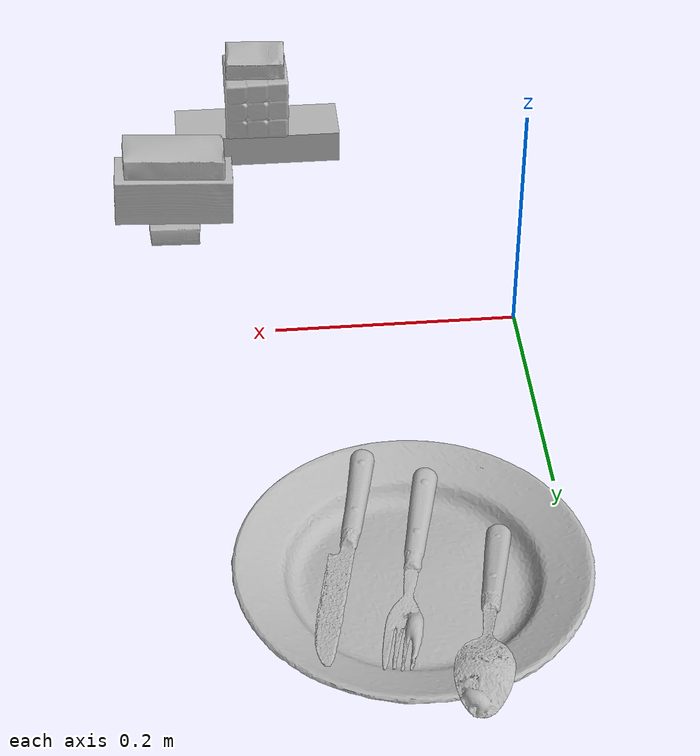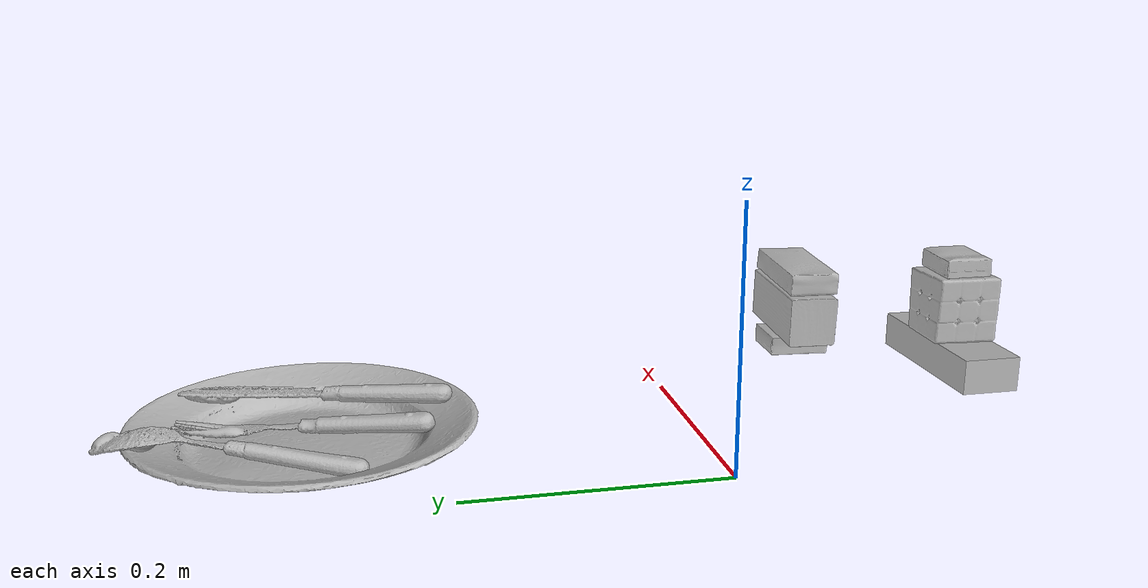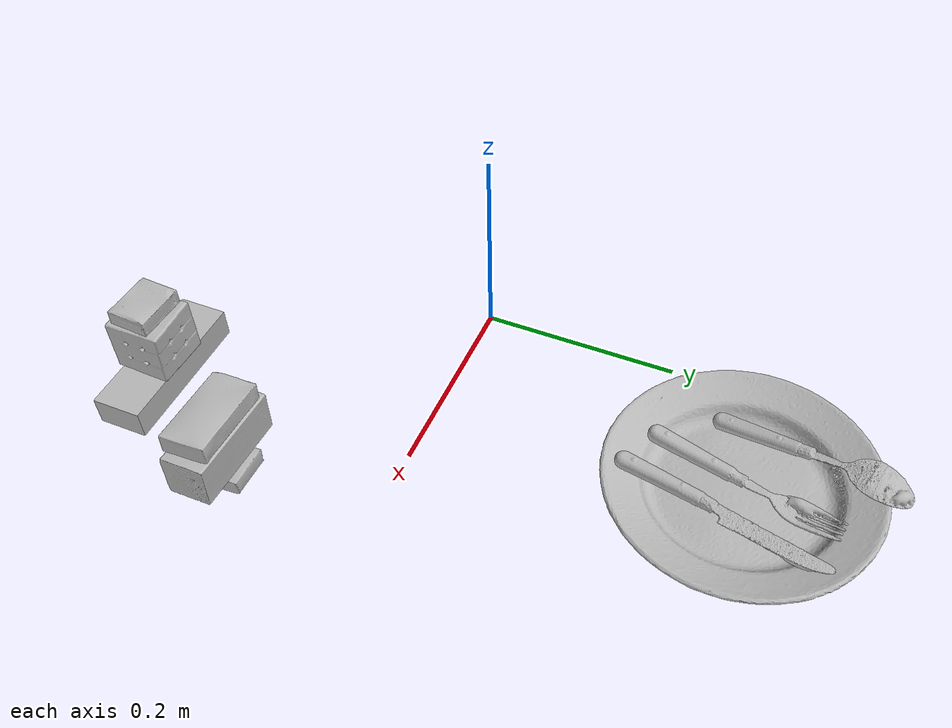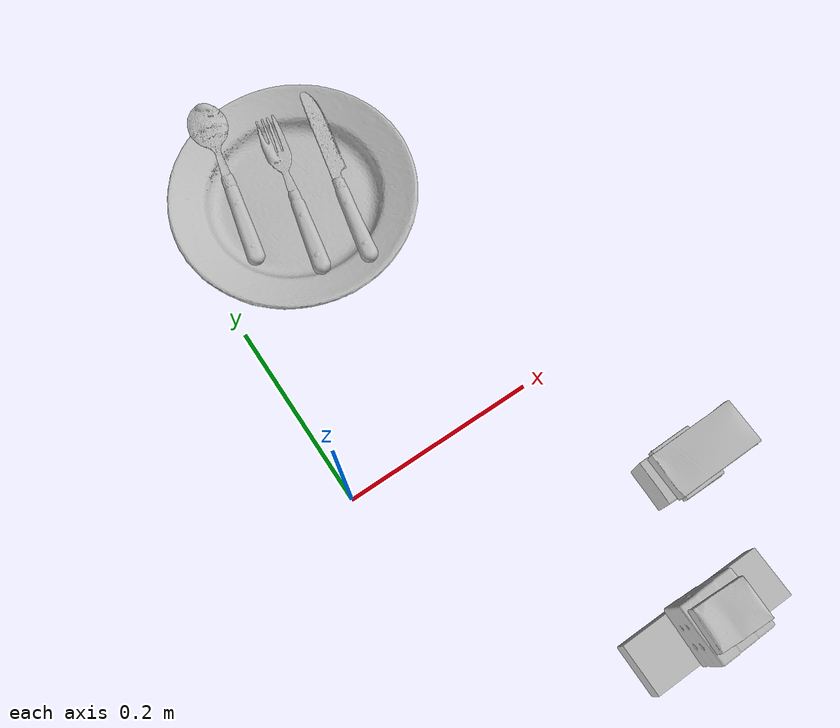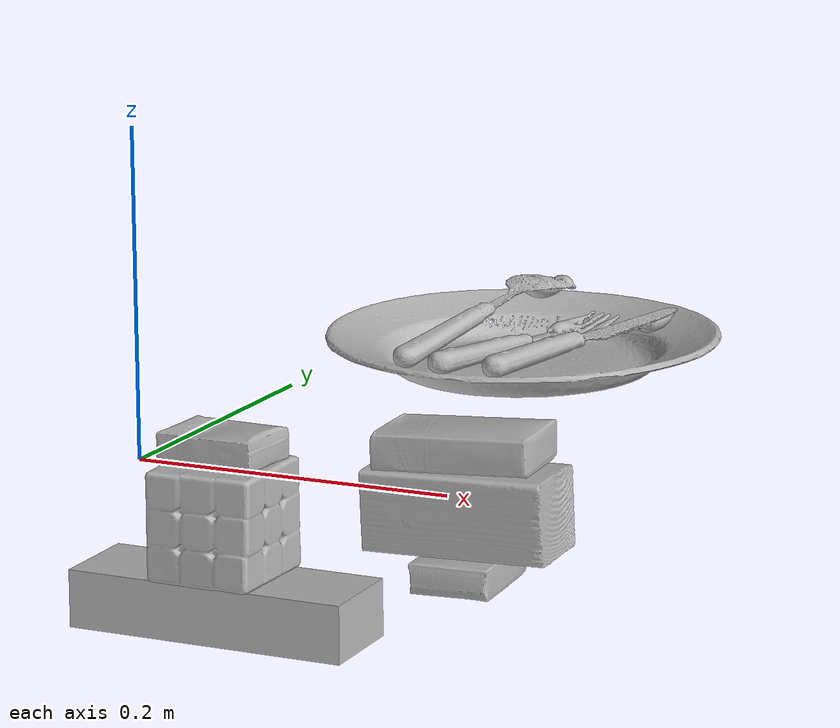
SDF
<?xml version="1.0" ?>
<sdf version="1.4">
  <world name="default">
    <light name="light1" type="point">
      <pose>0 0 1 0 0 0</pose>
      <diffuse>3 3 3 1</diffuse>
      <specular>3 3 3 1</specular>
    </light>
    <light name="light2" type="point">
      <pose>0 0.5 2 0 0 0</pose>
      <diffuse>1 1 1 1</diffuse>
      <specular>1 1 1 1</specular>
    </light>
    <light name="light3" type="point">
      <pose>0 0.5 2 0 0 0</pose>
      <diffuse>3 3 3 1</diffuse>
      <specular>3 3 3 1</specular>
    </light>
    <scene>
      <ambient>0.7 0.7 0.7</ambient>
    </scene>
    <model name="box11">
      <link name="link_box11">
        <collision name="default">
          <geometry>
            <mesh>
              <uri>model://pudding_box/collision_meshes/collision.obj</uri>
              <scale>0.5 0.5 0.5</scale>
            </mesh>
          </geometry>
          <surface>
            <friction>
              <ode>
                <mu>0.5</mu>
                <mu2>0.5</mu2>
              </ode>
            </friction>
          </surface>
        </collision>
        <visual name="default">
          <geometry>
            <mesh>
              <uri>model://pudding_box/visual_meshes/visual.dae</uri>
              <scale>0.5 0.5 0.5</scale>
            </mesh>
          </geometry>
        </visual>
        <inertial>
          <mass>0.05641884729266167</mass>
          <pose>0.00024474109522998333 0.000403394311433658 -0.00025944141088984907 0.005213101771016666 -0.006603799659696515 0.020079828883224148</pose>
          <inertia>
            <ixx>1.5944652e-05</ixx>
            <iyy>1.0727675e-05</iyy>
            <izz>2.3546443e-05</izz>
            <ixy>0</ixy>
            <ixz>0</ixz>
            <iyz>0</iyz>
          </inertia>
        </inertial>
      </link>
      <pose>0.279742568731308 -0.15025538206100464 0.00986267440021038 0.022578369785068116 -0.011343138052936451 1.4367127082431098e-06</pose>
    </model>
    <model name="box12">
      <link name="link_box12">
        <collision name="default">
          <geometry>
            <mesh>
              <uri>model://wood_block/collision_meshes/collision.obj</uri>
              <scale>0.5 0.5 0.5</scale>
            </mesh>
          </geometry>
          <surface>
            <friction>
              <ode>
                <mu>0.5</mu>
                <mu2>0.5</mu2>
              </ode>
            </friction>
          </surface>
        </collision>
        <visual name="default">
          <geometry>
            <mesh>
              <uri>model://wood_block/visual_meshes/visual.dae</uri>
              <scale>0.5 0.5 0.5</scale>
            </mesh>
          </geometry>
        </visual>
        <inertial>
          <mass>0.1445801854133606</mass>
          <pose>-2.906657982748584e-06 -0.000285404734313488 0.00013204291462898254 -0.052208162951624955 -0.0051926954609686745 -0.006861377578377277</pose>
          <inertia>
            <ixx>4.836754e-05</ixx>
            <iyy>0.0001527931</iyy>
            <izz>0.00015222155</izz>
            <ixy>0</ixy>
            <ixz>0</ixz>
            <iyz>0</iyz>
          </inertia>
        </inertial>
      </link>
      <pose>0.27909019589424133 -0.15037652850151062 0.041747745126485825 0.023224815732091706 -0.030464500890363993 -0.014476995879833155</pose>
    </model>
    <model name="box13">
      <link name="link_box13">
        <collision name="default">
          <geometry>
            <mesh>
              <uri>model://sugar_box/collision_meshes/collision.obj</uri>
              <scale>0.5 0.5 0.5</scale>
            </mesh>
          </geometry>
          <surface>
            <friction>
              <ode>
                <mu>0.5</mu>
                <mu2>0.5</mu2>
              </ode>
            </friction>
          </surface>
        </collision>
        <visual name="default">
          <geometry>
            <mesh>
              <uri>model://sugar_box/visual_meshes/visual.dae</uri>
              <scale>0.5 0.5 0.5</scale>
            </mesh>
          </geometry>
        </visual>
        <inertial>
          <mass>0.1187032163143158</mass>
          <pose>0.0005171863595023751 1.924554817378521e-05 -0.00018182402709499002 -0.0004046259512710581 0.0010506635216588768 0.002615378556274426</pose>
          <inertia>
            <ixx>2.4725794e-05</ixx>
            <iyy>7.991886e-05</iyy>
            <izz>9.567241e-05</izz>
            <ixy>0</ixy>
            <ixz>0</ixz>
            <iyz>0</iyz>
          </inertia>
        </inertial>
      </link>
      <pose>0.2775019407272339 -0.15163743495941162 0.07589137554168701 0.023080140989807957 -0.060102412558235965 0.004440957309337238</pose>
    </model>
    <model name="box21">
      <link name="link_box21">
        <collision name="default">
          <geometry>
            <mesh>
              <uri>model://jenga/collision_meshes/collision.obj</uri>
              <scale>1.0 1.0 1.0</scale>
            </mesh>
          </geometry>
          <surface>
            <friction>
              <ode>
                <mu>0.5</mu>
                <mu2>0.5</mu2>
              </ode>
            </friction>
          </surface>
        </collision>
        <visual name="default">
          <geometry>
            <mesh>
              <uri>model://jenga/visual_meshes/visual.dae</uri>
              <scale>1.0 1.0 1.0</scale>
            </mesh>
          </geometry>
        </visual>
        <inertial>
          <mass>0.20898528397083282</mass>
          <pose>-2.502855807051674e-07 -0.00010250010382151231 -4.092339804628864e-05 0.0 -7.342154049184251e-07 0.0</pose>
          <inertia>
            <ixx>5.7831294e-05</ixx>
            <iyy>0.0003918633</iyy>
            <izz>0.00041834736</izz>
            <ixy>0</ixy>
            <ixz>0</ixz>
            <iyz>0</iyz>
          </inertia>
        </inertial>
      </link>
      <pose>0.20000022649765015 -0.2698986828327179 0.015000315383076668 1.1303638952291235e-06 4.70580876379836e-06 -5.5579203724520636e-06</pose>
    </model>
    <model name="box22">
      <link name="link_box22">
        <collision name="default">
          <geometry>
            <mesh>
              <uri>model://rubiks_cube/collision_meshes/collision.obj</uri>
              <scale>1.0 1.0 1.0</scale>
            </mesh>
          </geometry>
          <surface>
            <friction>
              <ode>
                <mu>0.5</mu>
                <mu2>0.5</mu2>
              </ode>
            </friction>
          </surface>
        </collision>
        <visual name="default">
          <geometry>
            <mesh>
              <uri>model://rubiks_cube/visual_meshes/visual.dae</uri>
              <scale>1.0 1.0 1.0</scale>
            </mesh>
          </geometry>
        </visual>
        <inertial>
          <mass>0.28698527812957764</mass>
          <pose>2.6721041649580002e-05 5.2569666877388954e-05 -7.2643156272533815e-06 -0.05467256881712973 -0.09813902151902686 -0.034455808755049874</pose>
          <inertia>
            <ixx>0.00015857864</ixx>
            <iyy>0.00015783912</iyy>
            <izz>0.00015989273</izz>
            <ixy>0</ixy>
            <ixz>0</ixz>
            <iyz>0</iyz>
          </inertia>
        </inertial>
      </link>
      <pose>0.19993168115615845 -0.2702372074127197 0.05867922306060791 0.0001331726488825267 9.31110093182048e-08 0.0019619540432224236</pose>
    </model>
    <model name="box23">
      <link name="link_box23">
        <collision name="default">
          <geometry>
            <mesh>
              <uri>model://cracker_box/collision_meshes/collision.obj</uri>
              <scale>0.25 0.25 0.25</scale>
            </mesh>
          </geometry>
          <surface>
            <friction>
              <ode>
                <mu>0.5</mu>
                <mu2>0.5</mu2>
              </ode>
            </friction>
          </surface>
        </collision>
        <visual name="default">
          <geometry>
            <mesh>
              <uri>model://cracker_box/visual_meshes/visual.dae</uri>
              <scale>0.25 0.25 0.25</scale>
            </mesh>
          </geometry>
        </visual>
        <inertial>
          <mass>0.04468085244297981</mass>
          <pose>0.00023660414444748312 6.358561222441494e-05 -0.0004257383698131889 -0.0003162076226327385 -0.011106488669128663 0.0025467943033026423</pose>
          <inertia>
            <ixx>7.10301e-06</ixx>
            <iyy>1.1728463e-05</iyy>
            <izz>1.6737597e-05</izz>
            <ixy>0</ixy>
            <ixz>0</ixz>
            <iyz>0</iyz>
          </inertia>
        </inertial>
      </link>
      <pose>0.20007146894931793 -0.26979801058769226 0.09684175997972488 -0.01909406186172365 0.007079458018141586 -0.0493271058576663</pose>
    </model>
    <model name="plate1">
      <link name="link_plate1">
        <collision name="default">
          <geometry>
            <mesh>
              <uri>model://plate/collision_meshes/collision.obj</uri>
              <scale>1.0 1.0 1.0</scale>
            </mesh>
          </geometry>
          <surface>
            <friction>
              <ode>
                <mu>0.5</mu>
                <mu2>0.5</mu2>
              </ode>
            </friction>
          </surface>
        </collision>
        <visual name="default">
          <geometry>
            <mesh>
              <uri>model://plate/visual_meshes/visual.dae</uri>
              <scale>1.0 1.0 1.0</scale>
            </mesh>
          </geometry>
        </visual>
        <inertial>
          <mass>0.20184239745140076</mass>
          <pose>-0.0006044648471288383 0.00027825962752103806 -0.0010561983799561858 0.0022188105697194356 -0.003225466439192432 0.4526020757977656</pose>
          <inertia>
            <ixx>0.00094422296</ixx>
            <iyy>0.00093519164</iyy>
            <izz>0.0018467589</izz>
            <ixy>0</ixy>
            <ixz>0</ixz>
            <iyz>0</iyz>
          </inertia>
        </inertial>
      </link>
      <pose>0.11999999731779099 0.30000004172325134 0.013733006082475185 5.145557224804055e-08 -4.359753802355532e-08 -2.4557478616002897e-11</pose>
    </model>
    <model name="silverware1">
      <link name="link_silverware1">
        <collision name="default">
          <geometry>
            <mesh>
              <uri>model://fork/collision_meshes/collision.obj</uri>
              <scale>1.0 1.0 1.0</scale>
            </mesh>
          </geometry>
          <surface>
            <friction>
              <ode>
                <mu>0.5</mu>
                <mu2>0.5</mu2>
              </ode>
            </friction>
          </surface>
        </collision>
        <visual name="default">
          <geometry>
            <mesh>
              <uri>model://fork/visual_meshes/visual.dae</uri>
              <scale>1.0 1.0 1.0</scale>
            </mesh>
          </geometry>
        </visual>
        <inertial>
          <mass>0.03151825815439224</mass>
          <pose>-0.029570046812295914 0.00046588233090005815 0.0003218861820641905 -0.013550990610422763 -0.010977834578584837 0.014453900606944525</pose>
          <inertia>
            <ixx>1.1048933e-06</ixx>
            <iyy>8.2285114e-05</iyy>
            <izz>8.2779305e-05</izz>
            <ixy>0</ixy>
            <ixz>0</ixz>
            <iyz>0</iyz>
          </inertia>
        </inertial>
      </link>
      <pose>0.12082180380821228 0.29998698830604553 0.01799721084535122 0.08010335999611765 0.052121229259913 1.3484353322038327</pose>
    </model>
    <model name="silverware2">
      <link name="link_silverware2">
        <collision name="default">
          <geometry>
            <mesh>
              <uri>model://spoon/collision_meshes/collision.obj</uri>
              <scale>1.0 1.0 1.0</scale>
            </mesh>
          </geometry>
          <surface>
            <friction>
              <ode>
                <mu>0.5</mu>
                <mu2>0.5</mu2>
              </ode>
            </friction>
          </surface>
        </collision>
        <visual name="default">
          <geometry>
            <mesh>
              <uri>model://spoon/visual_meshes/visual.dae</uri>
              <scale>1.0 1.0 1.0</scale>
            </mesh>
          </geometry>
        </visual>
        <inertial>
          <mass>0.04083608463406563</mass>
          <pose>-0.005526324734091759 -0.001603417913429439 -0.0007271658978424966 0.03521537575369321 -0.03906582415196765 0.006150608891198343</pose>
          <inertia>
            <ixx>2.2713682e-06</ixx>
            <iyy>0.0001553799</iyy>
            <izz>0.0001565001</izz>
            <ixy>0</ixy>
            <ixz>0</ixz>
            <iyz>0</iyz>
          </inertia>
        </inertial>
      </link>
      <pose>0.07335682213306427 0.35084351897239685 0.0227047111839056 -3.1185348228182015 -0.16729716552714632 1.3553101961004772</pose>
    </model>
    <model name="silverware3">
      <link name="link_silverware3">
        <collision name="default">
          <geometry>
            <mesh>
              <uri>model://knife/collision_meshes/collision.obj</uri>
              <scale>1.0 1.0 1.0</scale>
            </mesh>
          </geometry>
          <surface>
            <friction>
              <ode>
                <mu>0.5</mu>
                <mu2>0.5</mu2>
              </ode>
            </friction>
          </surface>
        </collision>
        <visual name="default">
          <geometry>
            <mesh>
              <uri>model://knife/visual_meshes/visual.dae</uri>
              <scale>1.0 1.0 1.0</scale>
            </mesh>
          </geometry>
        </visual>
        <inertial>
          <mass>0.024411516264081</mass>
          <pose>-0.023785248398780823 0.0015275123296305537 5.062021955382079e-05 0.07305335097392199 0.01724841144103926 -0.007409823891069756</pose>
          <inertia>
            <ixx>6.9289786e-07</ixx>
            <iyy>9.37851e-05</iyy>
            <izz>9.400826e-05</izz>
            <ixy>0</ixy>
            <ixz>0</ixz>
            <iyz>0</iyz>
          </inertia>
        </inertial>
      </link>
      <pose>0.16968555748462677 0.2900628447532654 0.0273379385471344 -0.06580812449842695 0.0017068247805594305 1.3439017217788318</pose>
    </model>
  </world>
</sdf>
